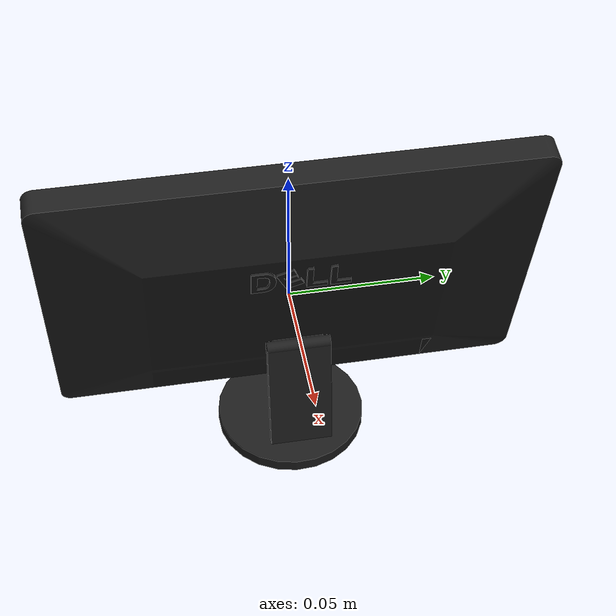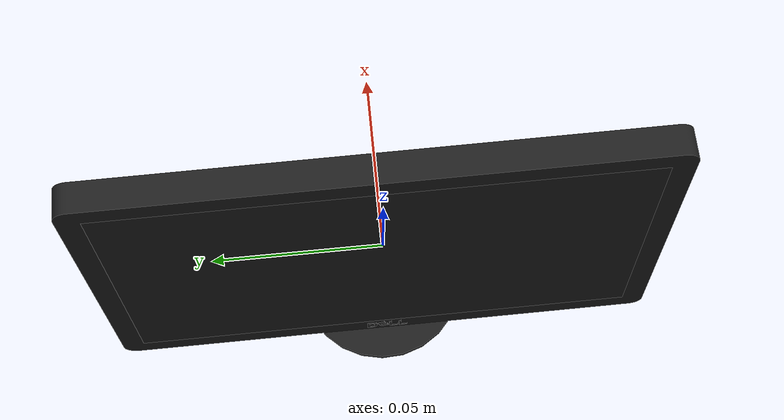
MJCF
<mujoco model="partnet_4589">
  <option iterations="50" timestep="0.001" solver="PGS" gravity="0 0 -9.81" />
  <compiler angle="radian" meshdir="textured_objs_thickness" eulerseq="zyx" autolimits="true" />
  <default>
    <mesh scale="0.1 0.1 0.1" />
    <joint limited="true" damping="0.01" armature="0.01" frictionloss="0.01" />
    <motor ctrllimited="true" />
    <equality solref="0.001 2" />
    <default class="visual">
      <geom condim="1" contype="0" conaffinity="0" group="2" />
    </default>
    <default class="collision">
      <geom condim="4" contype="1" conaffinity="14" friction="0.9 0.2 0.2" solref="0.001 2" group="3" />
    </default>
  </default>
  <asset>
    <material name="original-15_material_0_0" specular="0.06666666666666667" shininess="0.03" rgba="0.11372549019607843 0.11372549019607843 0.11372549019607843 1" />
    <mesh file="original-15/original-15.obj" name="original-15" />
    <material name="original-5_material_0_0" specular="0.06666666666666667" shininess="0.03" rgba="0.11372549019607843 0.11372549019607843 0.11372549019607843 1" />
    <mesh file="original-5/original-5.obj" name="original-5" />
    <material name="original-10_material_0_0" specular="0.06666666666666667" shininess="0.03" rgba="0.11372549019607843 0.11372549019607843 0.11372549019607843 1" />
    <mesh file="original-10/original-10.obj" name="original-10" />
    <material name="original-8_material_0_0" specular="0.06666666666666667" shininess="0.03" rgba="0.11372549019607843 0.11372549019607843 0.11372549019607843 1" />
    <mesh file="original-8/original-8.obj" name="original-8" />
    <material name="new-1_material-0" specular="0.06666666666666667" shininess="0.03" rgba="0.11372549019607843 0.11372549019607843 0.11372549019607843 1" />
    <mesh file="new-1/new-1.obj" name="new-1" />
    <material name="original-9_material_0_0" specular="0.06666666666666667" shininess="0.03" rgba="0.11372549019607843 0.11372549019607843 0.11372549019607843 1" />
    <mesh file="original-9/original-9.obj" name="original-9" />
    <material name="original-4_material_0_0" specular="0.06666666666666667" shininess="0.03" rgba="0.11372549019607843 0.11372549019607843 0.11372549019607843 1" />
    <mesh file="original-4/original-4.obj" name="original-4" />
    <material name="original-14_material_0_0" specular="0.06666666666666667" shininess="0.03" rgba="0.11372549019607843 0.11372549019607843 0.11372549019607843 1" />
    <mesh file="original-14/original-14.obj" name="original-14" />
    <material name="original-6_material_0_0" specular="0.06666666666666667" shininess="0.03" rgba="0.11372549019607843 0.11372549019607843 0.11372549019607843 1" />
    <mesh file="original-6/original-6.obj" name="original-6" />
    <material name="original-11_material_0_0" specular="0.06666666666666667" shininess="0.03" rgba="0.11372549019607843 0.11372549019607843 0.11372549019607843 1" />
    <mesh file="original-11/original-11.obj" name="original-11" />
    <material name="new-0_material-0" specular="0.06666666666666667" shininess="0.03" rgba="0.11372549019607843 0.11372549019607843 0.11372549019607843 1" />
    <mesh file="new-0/new-0.obj" name="new-0" />
    <material name="original-3_material_0_0" specular="0.06666666666666667" shininess="0.03" rgba="0.11372549019607843 0.11372549019607843 0.11372549019607843 1" />
    <mesh file="original-3/original-3.obj" name="original-3" />
  </asset>
  <worldbody>
    <light directional="true" pos="0 0 0.05" dir="0 0 -1" castshadow="false" />
    <body name="link_1" pos="0.0 0.0 0.0" quat="0.4999999999999998 0.5 -0.5000000000000002 -0.5">
      <geom pos="0.0 0.0 0.0" quat="1 0 0 0" type="mesh" mesh="original-15" material="original-15_material_0_0" density="0" class="visual" />
      <geom pos="0.0 0.0 0.0" quat="1 0 0 0" type="mesh" mesh="original-14" material="original-14_material_0_0" density="0" class="visual" />
      <geom pos="0.0 0.0 0.0" quat="1 0 0 0" type="mesh" mesh="original-15" material="original-15_material_0_0" class="collision" />
      <geom pos="0.0 0.0 0.0" quat="1 0 0 0" type="mesh" mesh="original-14" material="original-14_material_0_0" class="collision" />
      <body name="link_0" pos="0.009387200000000063 -0.015523215990950332 -0.007618436310905705">
        <joint name="joint_0" pos="0 0 0" axis="-1 0 0" range="-0.0 0.4363323129985824" type="hinge" />
        <geom pos="-0.009387200000000063 0.015523215990950332 0.007618436310905705" quat="1 0 0 0" type="mesh" mesh="original-4" material="original-4_material_0_0" density="0" class="visual" />
        <geom pos="-0.009387200000000063 0.015523215990950332 0.007618436310905705" quat="1 0 0 0" type="mesh" mesh="original-3" material="original-3_material_0_0" density="0" class="visual" />
        <geom pos="-0.009387200000000063 0.015523215990950332 0.007618436310905705" quat="1 0 0 0" type="mesh" mesh="new-1" material="new-1_material-0" density="0" class="visual" />
        <geom pos="-0.009387200000000063 0.015523215990950332 0.007618436310905705" quat="1 0 0 0" type="mesh" mesh="original-5" material="original-5_material_0_0" density="0" class="visual" />
        <geom pos="-0.009387200000000063 0.015523215990950332 0.007618436310905705" quat="1 0 0 0" type="mesh" mesh="original-6" material="original-6_material_0_0" density="0" class="visual" />
        <geom pos="-0.009387200000000063 0.015523215990950332 0.007618436310905705" quat="1 0 0 0" type="mesh" mesh="original-8" material="original-8_material_0_0" density="0" class="visual" />
        <geom pos="-0.009387200000000063 0.015523215990950332 0.007618436310905705" quat="1 0 0 0" type="mesh" mesh="original-9" material="original-9_material_0_0" density="0" class="visual" />
        <geom pos="-0.009387200000000063 0.015523215990950332 0.007618436310905705" quat="1 0 0 0" type="mesh" mesh="original-10" material="original-10_material_0_0" density="0" class="visual" />
        <geom pos="-0.009387200000000063 0.015523215990950332 0.007618436310905705" quat="1 0 0 0" type="mesh" mesh="original-11" material="original-11_material_0_0" density="0" class="visual" />
        <geom pos="-0.009387200000000063 0.015523215990950332 0.007618436310905705" quat="1 0 0 0" type="mesh" mesh="new-0" material="new-0_material-0" density="0" class="visual" />
        <geom pos="-0.009387200000000063 0.015523215990950332 0.007618436310905705" quat="1 0 0 0" type="mesh" mesh="original-4" material="original-4_material_0_0" class="collision" />
        <geom pos="-0.009387200000000063 0.015523215990950332 0.007618436310905705" quat="1 0 0 0" type="mesh" mesh="original-3" material="original-3_material_0_0" class="collision" />
        <geom pos="-0.009387200000000063 0.015523215990950332 0.007618436310905705" quat="1 0 0 0" type="mesh" mesh="new-1" material="new-1_material-0" class="collision" />
        <geom pos="-0.009387200000000063 0.015523215990950332 0.007618436310905705" quat="1 0 0 0" type="mesh" mesh="original-5" material="original-5_material_0_0" class="collision" />
        <geom pos="-0.009387200000000063 0.015523215990950332 0.007618436310905705" quat="1 0 0 0" type="mesh" mesh="original-6" material="original-6_material_0_0" class="collision" />
        <geom pos="-0.009387200000000063 0.015523215990950332 0.007618436310905705" quat="1 0 0 0" type="mesh" mesh="original-8" material="original-8_material_0_0" class="collision" />
        <geom pos="-0.009387200000000063 0.015523215990950332 0.007618436310905705" quat="1 0 0 0" type="mesh" mesh="original-9" material="original-9_material_0_0" class="collision" />
        <geom pos="-0.009387200000000063 0.015523215990950332 0.007618436310905705" quat="1 0 0 0" type="mesh" mesh="original-10" material="original-10_material_0_0" class="collision" />
        <geom pos="-0.009387200000000063 0.015523215990950332 0.007618436310905705" quat="1 0 0 0" type="mesh" mesh="original-11" material="original-11_material_0_0" class="collision" />
        <geom pos="-0.009387200000000063 0.015523215990950332 0.007618436310905705" quat="1 0 0 0" type="mesh" mesh="new-0" material="new-0_material-0" class="collision" />
      </body>
    </body>
  </worldbody>
  <actuator>
    <motor name="joint_0" joint="joint_0" ctrllimited="true" ctrlrange="-1 1" gear="1" />
  </actuator>
</mujoco>
